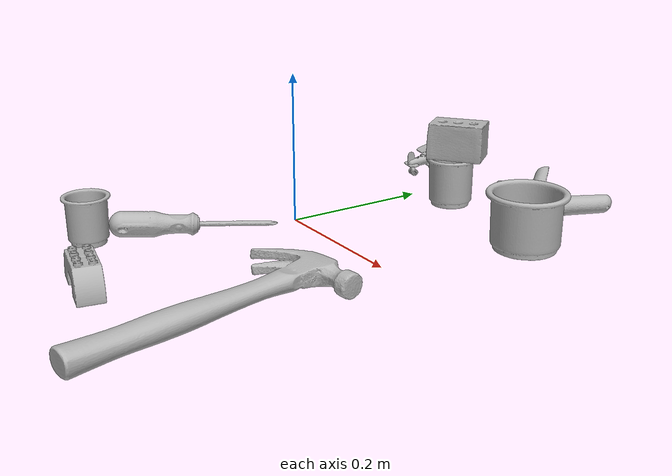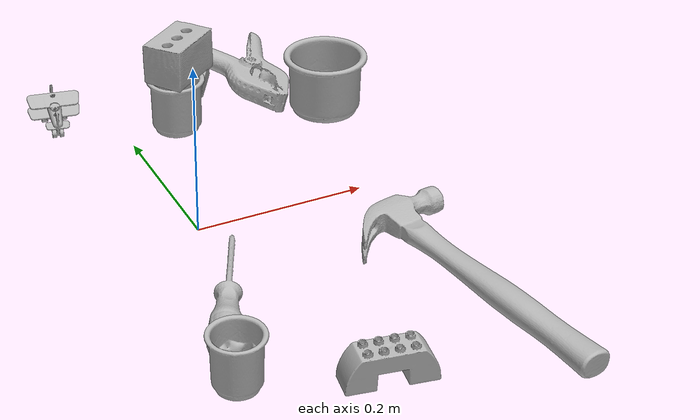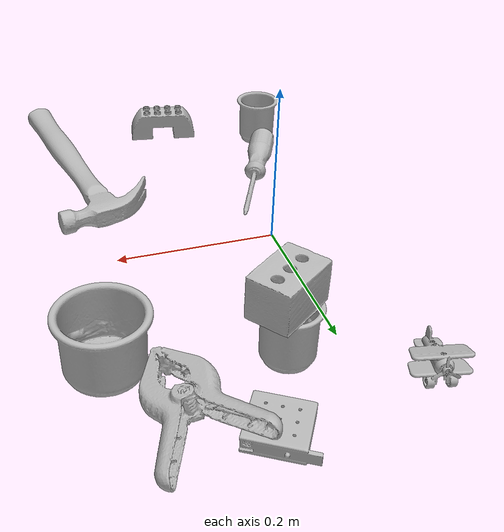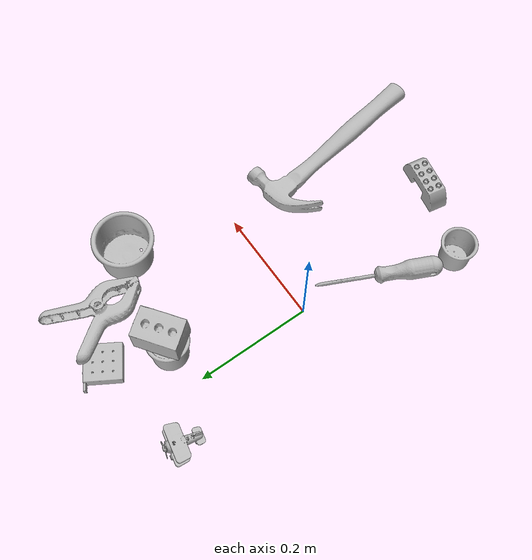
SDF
<sdf version="1.4">
  <world name="default">
    <light name="light1" type="point">
      <pose>0 0 1 0 0 0</pose>
      <diffuse>3 3 3 1</diffuse>
      <specular>3 3 3 1</specular>
    </light>
    <light name="light2" type="point">
      <pose>0 0.5 2 0 0 0</pose>
      <diffuse>1 1 1 1</diffuse>
      <specular>1 1 1 1</specular>
    </light>
    <light name="light3" type="point">
      <pose>0 0.5 2 0 0 0</pose>
      <diffuse>3 3 3 1</diffuse>
      <specular>3 3 3 1</specular>
    </light>
    <scene>
      <ambient>0.7 0.7 0.7</ambient>
    </scene>
    <model name="cup1">
      <link name="link_cup1">
        <collision name="default">
          <geometry>
            <mesh>
              <uri>model://j_cups/collision_meshes/collision.obj</uri>
              <scale>1.0 1.0 1.0</scale>
            </mesh>
          </geometry>
          <surface>
            <friction>
              <ode>
                <mu>0.5</mu>
                <mu2>0.5</mu2>
              </ode>
            </friction>
          <contact>
        <ode>
            <max_vel>0</max_vel>
            <min_depth>0.0001</min_depth>
            <kp>1e8</kp>
        </ode>
    </contact></surface>
        </collision>
        <visual name="default">
          <geometry>
            <mesh>
              <uri>model://j_cups/visual_meshes/visual.dae</uri>
              <scale>1.0 1.0 1.0</scale>
            </mesh>
          </geometry>
        </visual>
        <inertial>
          <mass>0.1112113818526268</mass>
          <pose>0.0006164852529764175 0.0005398975918069482 -0.0013479019980877638 0.030303955005909274 0.03757984422505388 0.4386955526072484</pose>
          <inertia>
            <ixx>0.00016329347</ixx>
            <iyy>0.00016499148</iyy>
            <izz>0.00018824349</izz>
            <ixy>0</ixy>
            <ixz>0</ixz>
            <iyz>0</iyz>
          </inertia>
        </inertial>
      </link>
      <pose>0.24877354502677917 0.18459783494472504 0.03798900172114372 8.444381290421068e-08 -4.134477794974149e-08 -1.0549805469207083</pose>
    </model>
    <model name="cup2">
      <link name="link_cup2">
        <collision name="default">
          <geometry>
            <mesh>
              <uri>model://b_cups/collision_meshes/collision.obj</uri>
              <scale>1.0 1.0 1.0</scale>
            </mesh>
          </geometry>
          <surface>
            <friction>
              <ode>
                <mu>0.5</mu>
                <mu2>0.5</mu2>
              </ode>
            </friction>
          <contact>
        <ode>
            <max_vel>0</max_vel>
            <min_depth>0.0001</min_depth>
            <kp>1e8</kp>
        </ode>
    </contact></surface>
        </collision>
        <visual name="default">
          <geometry>
            <mesh>
              <uri>model://b_cups/visual_meshes/visual.dae</uri>
              <scale>1.0 1.0 1.0</scale>
            </mesh>
          </geometry>
        </visual>
        <inertial>
          <mass>0.040588438510894775</mass>
          <pose>0.0005182006862014532 0.001805859268642962 -0.001338181202299893 0.11356319114734177 0.03872522211554688 -0.34569586720892936</pose>
          <inertia>
            <ixx>2.6567977e-05</ixx>
            <iyy>2.6063572e-05</iyy>
            <izz>2.235645e-05</izz>
            <ixy>0</ixy>
            <ixz>0</ixz>
            <iyz>0</iyz>
          </inertia>
        </inertial>
      </link>
      <pose>-0.06972405314445496 -0.2618357837200165 0.03199611231684685 -0.007627383480582701 -0.003840364901865392 0.33227170736652745</pose>
    </model>
    <model name="cup3">
      <link name="link_cup3">
        <collision name="default">
          <geometry>
            <mesh>
              <uri>model://d_cups/collision_meshes/collision.obj</uri>
              <scale>1.0 1.0 1.0</scale>
            </mesh>
          </geometry>
          <surface>
            <friction>
              <ode>
                <mu>0.5</mu>
                <mu2>0.5</mu2>
              </ode>
            </friction>
          <contact>
        <ode>
            <max_vel>0</max_vel>
            <min_depth>0.0001</min_depth>
            <kp>1e8</kp>
        </ode>
    </contact></surface>
        </collision>
        <visual name="default">
          <geometry>
            <mesh>
              <uri>model://d_cups/visual_meshes/visual.dae</uri>
              <scale>1.0 1.0 1.0</scale>
            </mesh>
          </geometry>
        </visual>
        <inertial>
          <mass>0.030152590945363045</mass>
          <pose>0.000806804746389389 0.0019117394695058465 -0.0022666517179459333 0.2401234305416289 -0.2470973002062907 0.5942515272324471</pose>
          <inertia>
            <ixx>2.5244808e-05</ixx>
            <iyy>2.517175e-05</iyy>
            <izz>2.2850849e-05</izz>
            <ixy>0</ixy>
            <ixz>0</ixz>
            <iyz>0</iyz>
          </inertia>
        </inertial>
      </link>
      <pose>0.06343362480401993 0.21801261603832245 0.03466121852397919 0.00017778383410378934 6.352463970308727e-05 -2.8625244028543175</pose>
    </model>
    <model name="toy1">
      <link name="link_toy1">
        <collision name="default">
          <geometry>
            <mesh>
              <uri>model://e_lego_duplo/collision_meshes/collision.obj</uri>
              <scale>1.0 1.0 1.0</scale>
            </mesh>
          </geometry>
          <surface>
            <friction>
              <ode>
                <mu>0.5</mu>
                <mu2>0.5</mu2>
              </ode>
            </friction>
          <contact>
        <ode>
            <max_vel>0</max_vel>
            <min_depth>0.0001</min_depth>
            <kp>1e8</kp>
        </ode>
    </contact></surface>
        </collision>
        <visual name="default">
          <geometry>
            <mesh>
              <uri>model://e_lego_duplo/visual_meshes/visual.dae</uri>
              <scale>1.0 1.0 1.0</scale>
            </mesh>
          </geometry>
        </visual>
        <inertial>
          <mass>0.09282131493091583</mass>
          <pose>0.0003256045747548342 0.00023485456767957658 0.0019521460635587573 -0.022567664257634346 -6.825452093688492e-05 -0.007625138047361518</pose>
          <inertia>
            <ixx>1.9356308e-05</ixx>
            <iyy>7.944328e-05</iyy>
            <izz>7.736177e-05</izz>
            <ixy>0</ixy>
            <ixz>0</ixz>
            <iyz>0</iyz>
          </inertia>
        </inertial>
      </link>
      <pose>0.06565769761800766 -0.312318354845047 0.02180900052189827 6.350834473131812e-07 -4.0015196712438984e-07 -0.17317980440726316</pose>
    </model>
    <model name="toy2">
      <link name="link_toy2">
        <collision name="default">
          <geometry>
            <mesh>
              <uri>model://nine_hole_peg_test/collision_meshes/collision.obj</uri>
              <scale>0.5 0.5 0.5</scale>
            </mesh>
          </geometry>
          <surface>
            <friction>
              <ode>
                <mu>0.5</mu>
                <mu2>0.5</mu2>
              </ode>
            </friction>
          <contact>
        <ode>
            <max_vel>0</max_vel>
            <min_depth>0.0001</min_depth>
            <kp>1e8</kp>
        </ode>
    </contact></surface>
        </collision>
        <visual name="default">
          <geometry>
            <mesh>
              <uri>model://nine_hole_peg_test/visual_meshes/visual.dae</uri>
              <scale>0.5 0.5 0.5</scale>
            </mesh>
          </geometry>
        </visual>
        <inertial>
          <mass>0.0661587193608284</mass>
          <pose>-0.002308693015947938 -0.0048238071613013744 1.3230345757619943e-05 -0.0014666794270044752 0.0007194176174711586 -0.6342418340283942</pose>
          <inertia>
            <ixx>2.5862508e-05</ixx>
            <iyy>2.4147552e-05</iyy>
            <izz>4.531874e-05</izz>
            <ixy>0</ixy>
            <ixz>0</ixz>
            <iyz>0</iyz>
          </inertia>
        </inertial>
      </link>
      <pose>0.10642135143280029 0.32035204768180847 0.01038549467921257 8.403757727884786e-06 4.662303869363331e-06 1.0338355630863916</pose>
    </model>
    <model name="toy3">
      <link name="link_toy3">
        <collision name="default">
          <geometry>
            <mesh>
              <uri>model://foam_brick/collision_meshes/collision.obj</uri>
              <scale>1.0 1.0 1.0</scale>
            </mesh>
          </geometry>
          <surface>
            <friction>
              <ode>
                <mu>0.5</mu>
                <mu2>0.5</mu2>
              </ode>
            </friction>
          <contact>
        <ode>
            <max_vel>0</max_vel>
            <min_depth>0.0001</min_depth>
            <kp>1e8</kp>
        </ode>
    </contact></surface>
        </collision>
        <visual name="default">
          <geometry>
            <mesh>
              <uri>model://foam_brick/visual_meshes/visual.dae</uri>
              <scale>1.0 1.0 1.0</scale>
            </mesh>
          </geometry>
        </visual>
        <inertial>
          <mass>0.15239986777305603</mass>
          <pose>-0.00025224717683158815 0.0003458431747276336 -0.00025321010616607964 -0.29401565585717926 0.017274441097588973 -0.0007449887293440311</pose>
          <inertia>
            <ixx>6.6571105e-05</ixx>
            <iyy>0.00010628419</iyy>
            <izz>0.00010763494</izz>
            <ixy>0</ixy>
            <ixz>0</ixz>
            <iyz>0</iyz>
          </inertia>
        </inertial>
      </link>
      <pose>0.07004987448453903 0.22300462424755096 0.09502536803483963 0.012606050255326769 0.003796682796088628 -2.506522459861135</pose>
    </model>
    <model name="toy4">
      <link name="link_toy4">
        <collision name="default">
          <geometry>
            <mesh>
              <uri>model://a_toy_airplane/collision_meshes/collision.obj</uri>
              <scale>0.25 0.25 0.25</scale>
            </mesh>
          </geometry>
          <surface>
            <friction>
              <ode>
                <mu>0.5</mu>
                <mu2>0.5</mu2>
              </ode>
            </friction>
          <contact>
        <ode>
            <max_vel>0</max_vel>
            <min_depth>0.0001</min_depth>
            <kp>1e8</kp>
        </ode>
    </contact></surface>
        </collision>
        <visual name="default">
          <geometry>
            <mesh>
              <uri>model://a_toy_airplane/visual_meshes/visual.dae</uri>
              <scale>0.25 0.25 0.25</scale>
            </mesh>
          </geometry>
        </visual>
        <inertial>
          <mass>0.01630575954914093</mass>
          <pose>0.006291272584348917 -0.0009268299327231944 -0.0002990612993016839 -0.012016942866631759 -0.1466350865210375 0.004149072887705313</pose>
          <inertia>
            <ixx>3.7008767e-06</ixx>
            <iyy>5.392928e-06</iyy>
            <izz>6.314456e-06</izz>
            <ixy>0</ixy>
            <ixz>0</ixz>
            <iyz>0</iyz>
          </inertia>
        </inertial>
      </link>
      <pose>-0.07190573960542679 0.28074705600738525 0.023091614246368408 0.00040499621768670706 -3.642617788907693e-05 1.3713572214768788</pose>
    </model>
    <model name="hardware1">
      <link name="link_hardware1">
        <collision name="default">
          <geometry>
            <mesh>
              <uri>model://phillips_screwdriver/collision_meshes/collision.obj</uri>
              <scale>1.0 1.0 1.0</scale>
            </mesh>
          </geometry>
          <surface>
            <friction>
              <ode>
                <mu>0.5</mu>
                <mu2>0.5</mu2>
              </ode>
            </friction>
          <contact>
        <ode>
            <max_vel>0</max_vel>
            <min_depth>0.0001</min_depth>
            <kp>1e8</kp>
        </ode>
    </contact></surface>
        </collision>
        <visual name="default">
          <geometry>
            <mesh>
              <uri>model://phillips_screwdriver/visual_meshes/visual.dae</uri>
              <scale>1.0 1.0 1.0</scale>
            </mesh>
          </geometry>
        </visual>
        <inertial>
          <mass>0.05757145583629608</mass>
          <pose>-0.04777182266116142 0.001036230125464499 -0.000455554953077808 -0.1572215307256514 0.005850991069928943 -0.0021567397451199392</pose>
          <inertia>
            <ixx>6.764056e-06</ixx>
            <iyy>8.480946e-05</iyy>
            <izz>8.4881525e-05</izz>
            <ixy>0</ixy>
            <ixz>0</ixz>
            <iyz>0</iyz>
          </inertia>
        </inertial>
      </link>
      <pose>-0.024779019877314568 -0.14010003209114075 0.015409642830491066 0.06561073708244985 0.03756842779484416 1.1183547257940403</pose>
    </model>
    <model name="hardware2">
      <link name="link_hardware2">
        <collision name="default">
          <geometry>
            <mesh>
              <uri>model://hammer/collision_meshes/collision.obj</uri>
              <scale>1.0 1.0 1.0</scale>
            </mesh>
          </geometry>
          <surface>
            <friction>
              <ode>
                <mu>0.5</mu>
                <mu2>0.5</mu2>
              </ode>
            </friction>
          <contact>
        <ode>
            <max_vel>0</max_vel>
            <min_depth>0.0001</min_depth>
            <kp>1e8</kp>
        </ode>
    </contact></surface>
        </collision>
        <visual name="default">
          <geometry>
            <mesh>
              <uri>model://hammer/visual_meshes/visual.dae</uri>
              <scale>1.0 1.0 1.0</scale>
            </mesh>
          </geometry>
        </visual>
        <inertial>
          <mass>0.19043192267417908</mass>
          <pose>0.00941577646881342 -0.011892358772456646 -0.0001235063245985657 0.023155672419862355 -0.004792164441448863 -0.012760315407460211</pose>
          <inertia>
            <ixx>8.15718e-05</ixx>
            <iyy>0.0022103586</iyy>
            <izz>0.002273686</izz>
            <ixy>0</ixy>
            <ixz>0</ixz>
            <iyz>0</iyz>
          </inertia>
        </inertial>
      </link>
      <pose>0.20615047216415405 -0.22387290000915527 0.01626737043261528 -0.0051990589094313 -0.0013802330478478928 1.7302323242619337</pose>
    </model>
    <model name="hardware3">
      <link name="link_hardware3">
        <collision name="default">
          <geometry>
            <mesh>
              <uri>model://large_clamp/collision_meshes/collision.obj</uri>
              <scale>1.0 1.0 1.0</scale>
            </mesh>
          </geometry>
          <surface>
            <friction>
              <ode>
                <mu>0.5</mu>
                <mu2>0.5</mu2>
              </ode>
            </friction>
          <contact>
        <ode>
            <max_vel>0</max_vel>
            <min_depth>0.0001</min_depth>
            <kp>1e8</kp>
        </ode>
    </contact></surface>
        </collision>
        <visual name="default">
          <geometry>
            <mesh>
              <uri>model://large_clamp/visual_meshes/visual.dae</uri>
              <scale>1.0 1.0 1.0</scale>
            </mesh>
          </geometry>
        </visual>
        <inertial>
          <mass>0.18636001646518707</mass>
          <pose>0.006369354669004679 0.0003585688828025013 -0.0001839799078879878 -0.0021330740505354343 0.009671591251539349 0.02663317297682702</pose>
          <inertia>
            <ixx>0.0001644205</ixx>
            <iyy>0.00031224336</iyy>
            <izz>0.00045169977</izz>
            <ixy>0</ixy>
            <ixz>0</ixz>
            <iyz>0</iyz>
          </inertia>
        </inertial>
      </link>
      <pose>0.18525677919387817 0.27532634139060974 0.022607536986470222 -0.17783207207175433 0.09276802022669822 -1.46190893906511</pose>
    </model>
  <physics type="ode">
      <max_contacts>50</max_contacts>
      <ode>
        <solver>
          <type>quick</type>
          <iters>75</iters>
        </solver>
        <constraints>
          <contact_max_correcting_vel>0</contact_max_correcting_vel>
          <contact_surface_layer>0</contact_surface_layer>
        </constraints>
      </ode>
    </physics></world>
</sdf>
